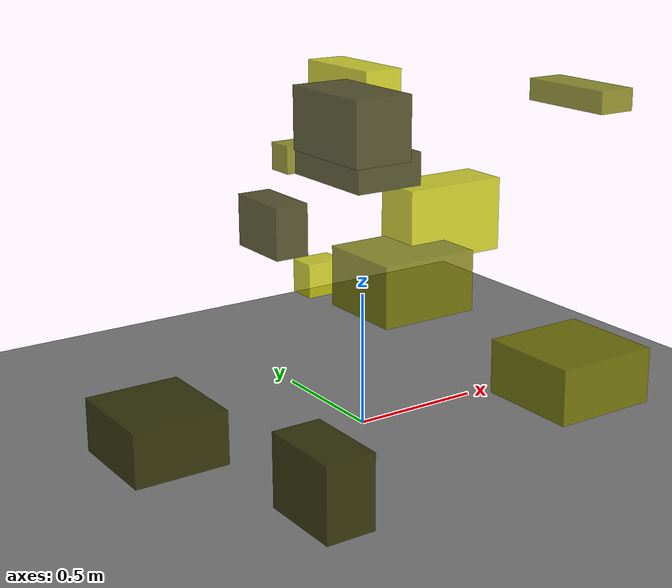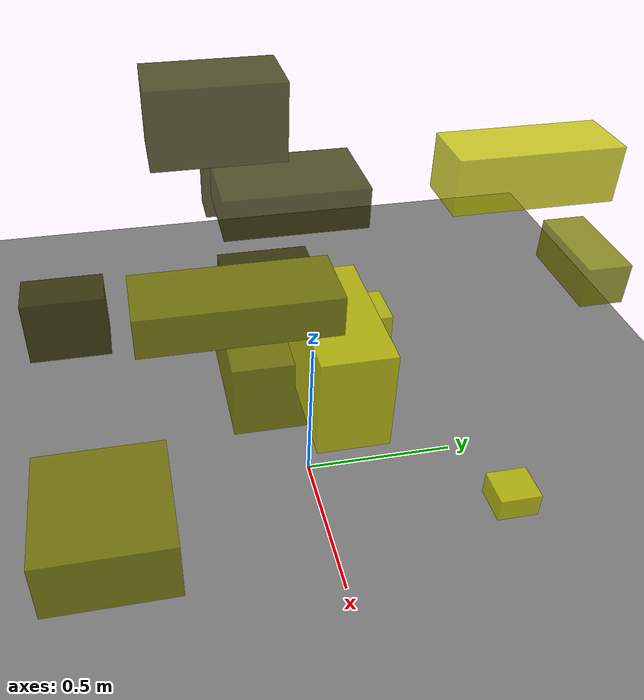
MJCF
<?xml version="1.0"?>
<mujoco model="obstacle_scene">
  <compiler angle="radian" coordinate="local"/>
  <option timestep="0.001" gravity="0 0 -9.81"/>

  <asset>
    <material name="obstacle_mat" rgba="0.8 0.8 0.0 0.8"/>
    <material name="ground_mat" rgba="0.5 0.5 0.5 1"/>
  </asset>

  <worldbody>
    <!-- Ground plane -->
    <geom name="ground" type="plane" size="3 3 0.1" material="ground_mat"/>

    <!-- Obstacles -->
    <body name="obstacle_0" pos="-0.454588 -0.141406 0.863682">
      <geom name="obs_0" type="box" size="0.058712 0.120788 0.087915" rgba="0.2 0.2 0.0 0.8"/>
    </body>
    <body name="obstacle_1" pos="0.408296 -0.658889 0.326556">
      <geom name="obs_1" type="box" size="0.191617 0.186397 0.097671" rgba="0.5 0.5 0.0 0.8"/>
    </body>
    <body name="obstacle_2" pos="0.332352 -0.025457 0.750757">
      <geom name="obs_2" type="box" size="0.199995 0.092518 0.136070" rgba="0.8 0.8 0.0 0.8"/>
    </body>
    <body name="obstacle_3" pos="-0.214537 -0.247499 1.192059">
      <geom name="obs_3" type="box" size="0.106152 0.186420 0.109420" rgba="0.2 0.2 0.0 0.8"/>
    </body>
    <body name="obstacle_4" pos="0.713083 -0.333052 1.209174">
      <geom name="obs_4" type="box" size="0.072438 0.186738 0.040227" rgba="0.5 0.5 0.0 0.8"/>
    </body>
    <body name="obstacle_5" pos="-0.068562 0.188997 0.538230">
      <geom name="obs_5" type="box" size="0.072295 0.054948 0.062279" rgba="0.8 0.8 0.0 0.8"/>
    </body>
    <body name="obstacle_6" pos="-0.675100 -0.773963 0.252859">
      <geom name="obs_6" type="box" size="0.084386 0.149208 0.125004" rgba="0.2 0.2 0.0 0.8"/>
    </body>
    <body name="obstacle_7" pos="0.089630 -0.117731 0.577995">
      <geom name="obs_7" type="box" size="0.187308 0.167687 0.110906" rgba="0.5 0.5 0.0 0.8"/>
    </body>
    <body name="obstacle_8" pos="0.522282 0.443481 0.342965">
      <geom name="obs_8" type="box" size="0.054408 0.058211 0.036026" rgba="0.8 0.8 0.0 0.8"/>
    </body>
    <body name="obstacle_9" pos="-0.827674 0.021483 0.163898">
      <geom name="obs_9" type="box" size="0.172194 0.185716 0.097674" rgba="0.2 0.2 0.0 0.8"/>
    </body>
    <body name="obstacle_10" pos="0.204179 0.685353 0.873434">
      <geom name="obs_10" type="box" size="0.131368 0.058846 0.056216" rgba="0.5 0.5 0.0 0.8"/>
    </body>
    <body name="obstacle_11" pos="0.258269 0.432955 1.194645">
      <geom name="obs_11" type="box" size="0.079307 0.199332 0.068936" rgba="0.8 0.8 0.0 0.8"/>
    </body>
    <body name="obstacle_12" pos="-0.071158 -0.069147 1.008706">
      <geom name="obs_12" type="box" size="0.127923 0.196720 0.058089" rgba="0.2 0.2 0.0 0.8"/>
    </body>
  </worldbody>
</mujoco>
